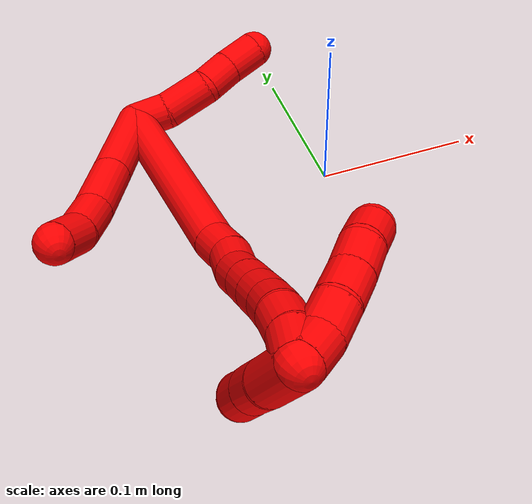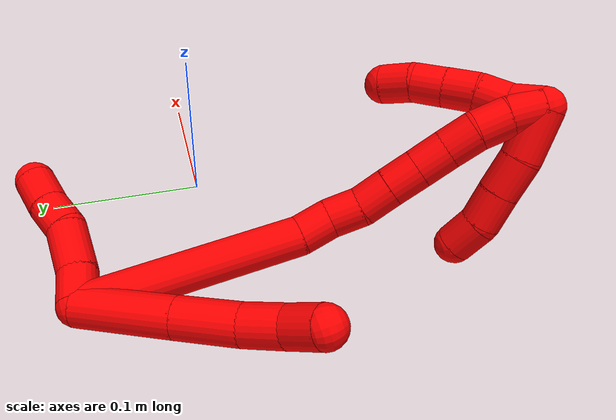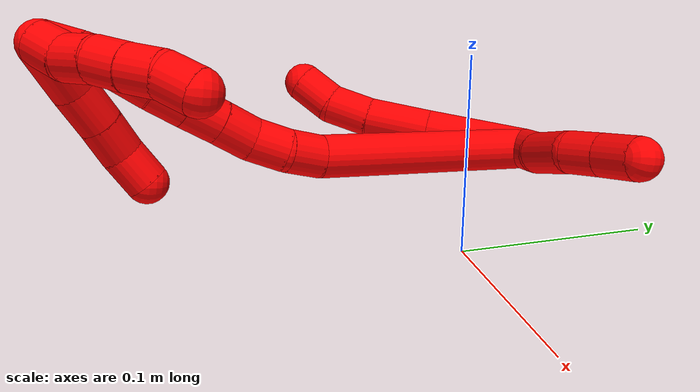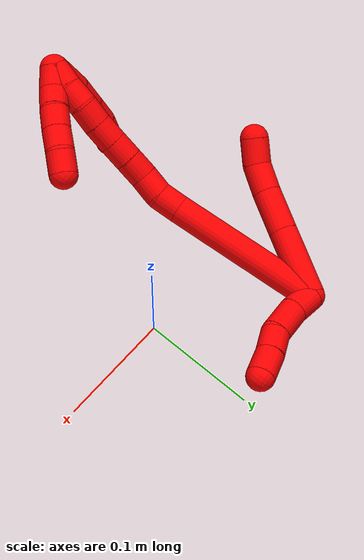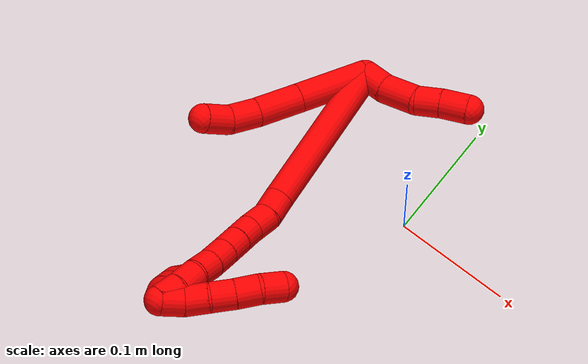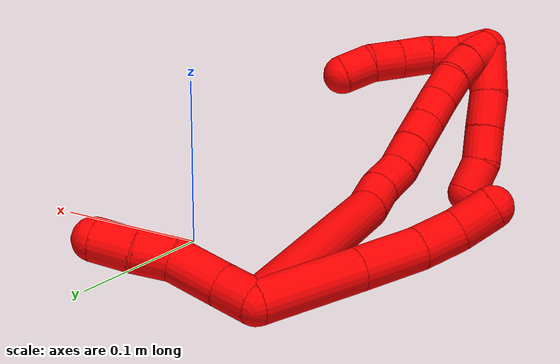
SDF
<sdf version="1.7">
 <world name="default">
  <model name="2">
   <static>0</static>
   <link name="2">
    <collision name="collision-cylinder-e_1_2_8">
     <pose>0.005205 0.014963 0.02638 -0.515945 0.169959 -0.044945</pose>
     <geometry><cylinder><radius>0.0125</radius><length>0.061543</length></cylinder></geometry>
     <surface>
      <friction><ode><mu>1.16</mu><mu2>1.16</mu2><slip1>0</slip1><slip2>0</slip2></ode></friction>
      <contact><ode><kp>1e+06</kp><kd>1</kd><max_vel>0</max_vel><min_depth>0.001</min_depth></ode></contact>
     </surface>
    </collision>
    <visual name="visual-cylinder-e_1_2_8">
     <pose>0.005205 0.014963 0.02638 -0.515945 0.169959 -0.044945</pose>
     <geometry><cylinder><radius>0.0125</radius><length>0.061543</length></cylinder></geometry>
     <material><ambient>1 0 0 1</ambient></material>
    </visual>
    <collision name="collision-cylinder-e_2_8_9">
     <pose>0.013946 0.039267 0.069373 -0.512261 0.183496 -0.04818</pose>
     <geometry><cylinder><radius>0.0125</radius><length>0.038768</length></cylinder></geometry>
     <surface>
      <friction><ode><mu>1.16</mu><mu2>1.16</mu2><slip1>0</slip1><slip2>0</slip2></ode></friction>
      <contact><ode><kp>1e+06</kp><kd>1</kd><max_vel>0</max_vel><min_depth>0.001</min_depth></ode></contact>
     </surface>
    </collision>
    <visual name="visual-cylinder-e_2_8_9">
     <pose>0.013946 0.039267 0.069373 -0.512261 0.183496 -0.04818</pose>
     <geometry><cylinder><radius>0.0125</radius><length>0.038768</length></cylinder></geometry>
     <material><ambient>1 0 0 1</ambient></material>
    </visual>
    <collision name="collision-cylinder-e_3_9_10">
     <pose>0.021523 0.054369 0.096964 -0.483182 0.31498 -0.078221</pose>
     <geometry><cylinder><radius>0.0125</radius><length>0.026079</length></cylinder></geometry>
     <surface>
      <friction><ode><mu>1.16</mu><mu2>1.16</mu2><slip1>0</slip1><slip2>0</slip2></ode></friction>
      <contact><ode><kp>1e+06</kp><kd>1</kd><max_vel>0</max_vel><min_depth>0.001</min_depth></ode></contact>
     </surface>
    </collision>
    <visual name="visual-cylinder-e_3_9_10">
     <pose>0.021523 0.054369 0.096964 -0.483182 0.31498 -0.078221</pose>
     <geometry><cylinder><radius>0.0125</radius><length>0.026079</length></cylinder></geometry>
     <material><ambient>1 0 0 1</ambient></material>
    </visual>
    <collision name="collision-cylinder-e_4_10_6">
     <pose>0.032487 0.065304 0.115982 -0.571922 0.626771 -0.189989</pose>
     <geometry><cylinder><radius>0.0125</radius><length>0.023609</length></cylinder></geometry>
     <surface>
      <friction><ode><mu>1.16</mu><mu2>1.16</mu2><slip1>0</slip1><slip2>0</slip2></ode></friction>
      <contact><ode><kp>1e+06</kp><kd>1</kd><max_vel>0</max_vel><min_depth>0.001</min_depth></ode></contact>
     </surface>
    </collision>
    <visual name="visual-cylinder-e_4_10_6">
     <pose>0.032487 0.065304 0.115982 -0.571922 0.626771 -0.189989</pose>
     <geometry><cylinder><radius>0.0125</radius><length>0.023609</length></cylinder></geometry>
     <material><ambient>1 0 0 1</ambient></material>
    </visual>
    <collision name="collision-cylinder-e_1_2_11">
     <pose>-0.002137 -0.011109 0.001568 1.43059 -0.188231 -0.163649</pose>
     <geometry><cylinder><radius>0.0125</radius><length>0.022841</length></cylinder></geometry>
     <surface>
      <friction><ode><mu>1.16</mu><mu2>1.16</mu2><slip1>0</slip1><slip2>0</slip2></ode></friction>
      <contact><ode><kp>1e+06</kp><kd>1</kd><max_vel>0</max_vel><min_depth>0.001</min_depth></ode></contact>
     </surface>
    </collision>
    <visual name="visual-cylinder-e_1_2_11">
     <pose>-0.002137 -0.011109 0.001568 1.43059 -0.188231 -0.163649</pose>
     <geometry><cylinder><radius>0.0125</radius><length>0.022841</length></cylinder></geometry>
     <material><ambient>1 0 0 1</ambient></material>
    </visual>
    <collision name="collision-cylinder-e_2_11_12">
     <pose>-0.004713 -0.037946 0.00268 1.59977 -0.027877 -0.028697</pose>
     <geometry><cylinder><radius>0.0125</radius><length>0.031482</length></cylinder></geometry>
     <surface>
      <friction><ode><mu>1.16</mu><mu2>1.16</mu2><slip1>0</slip1><slip2>0</slip2></ode></friction>
      <contact><ode><kp>1e+06</kp><kd>1</kd><max_vel>0</max_vel><min_depth>0.001</min_depth></ode></contact>
     </surface>
    </collision>
    <visual name="visual-cylinder-e_2_11_12">
     <pose>-0.004713 -0.037946 0.00268 1.59977 -0.027877 -0.028697</pose>
     <geometry><cylinder><radius>0.0125</radius><length>0.031482</length></cylinder></geometry>
     <material><ambient>1 0 0 1</ambient></material>
    </visual>
    <collision name="collision-cylinder-e_3_12_13">
     <pose>-0.006219 -0.063705 -0.001659 1.94012 -0.098869 -0.144155</pose>
     <geometry><cylinder><radius>0.0125</radius><length>0.021618</length></cylinder></geometry>
     <surface>
      <friction><ode><mu>1.16</mu><mu2>1.16</mu2><slip1>0</slip1><slip2>0</slip2></ode></friction>
      <contact><ode><kp>1e+06</kp><kd>1</kd><max_vel>0</max_vel><min_depth>0.001</min_depth></ode></contact>
     </surface>
    </collision>
    <visual name="visual-cylinder-e_3_12_13">
     <pose>-0.006219 -0.063705 -0.001659 1.94012 -0.098869 -0.144155</pose>
     <geometry><cylinder><radius>0.0125</radius><length>0.021618</length></cylinder></geometry>
     <material><ambient>1 0 0 1</ambient></material>
    </visual>
    <collision name="collision-cylinder-e_4_13_5">
     <pose>-0.008641 -0.085318 -0.008494 1.82039 -0.112958 -0.145263</pose>
     <geometry><cylinder><radius>0.0125</radius><length>0.024059</length></cylinder></geometry>
     <surface>
      <friction><ode><mu>1.16</mu><mu2>1.16</mu2><slip1>0</slip1><slip2>0</slip2></ode></friction>
      <contact><ode><kp>1e+06</kp><kd>1</kd><max_vel>0</max_vel><min_depth>0.001</min_depth></ode></contact>
     </surface>
    </collision>
    <visual name="visual-cylinder-e_4_13_5">
     <pose>-0.008641 -0.085318 -0.008494 1.82039 -0.112958 -0.145263</pose>
     <geometry><cylinder><radius>0.0125</radius><length>0.024059</length></cylinder></geometry>
     <material><ambient>1 0 0 1</ambient></material>
    </visual>
    <collision name="collision-cylinder-e_1_2_14">
     <pose>-0.006566 -0.001356 0.067932 0.019954 -0.096336 -0.000962</pose>
     <geometry><cylinder><radius>0.0125</radius><length>0.136524</length></cylinder></geometry>
     <surface>
      <friction><ode><mu>1.16</mu><mu2>1.16</mu2><slip1>0</slip1><slip2>0</slip2></ode></friction>
      <contact><ode><kp>1e+06</kp><kd>1</kd><max_vel>0</max_vel><min_depth>0.001</min_depth></ode></contact>
     </surface>
    </collision>
    <visual name="visual-cylinder-e_1_2_14">
     <pose>-0.006566 -0.001356 0.067932 0.019954 -0.096336 -0.000962</pose>
     <geometry><cylinder><radius>0.0125</radius><length>0.136524</length></cylinder></geometry>
     <material><ambient>1 0 0 1</ambient></material>
    </visual>
    <collision name="collision-cylinder-e_2_14_15">
     <pose>-0.01212 -0.004514 0.146367 0.16995 0.094647 0.008068</pose>
     <geometry><cylinder><radius>0.0125</radius><length>0.021408</length></cylinder></geometry>
     <surface>
      <friction><ode><mu>1.16</mu><mu2>1.16</mu2><slip1>0</slip1><slip2>0</slip2></ode></friction>
      <contact><ode><kp>1e+06</kp><kd>1</kd><max_vel>0</max_vel><min_depth>0.001</min_depth></ode></contact>
     </surface>
    </collision>
    <visual name="visual-cylinder-e_2_14_15">
     <pose>-0.01212 -0.004514 0.146367 0.16995 0.094647 0.008068</pose>
     <geometry><cylinder><radius>0.0125</radius><length>0.021408</length></cylinder></geometry>
     <material><ambient>1 0 0 1</ambient></material>
    </visual>
    <collision name="collision-cylinder-e_3_15_16">
     <pose>-0.00846 -0.005582 0.167 -0.072361 0.255065 -0.009283</pose>
     <geometry><cylinder><radius>0.0125</radius><length>0.020994</length></cylinder></geometry>
     <surface>
      <friction><ode><mu>1.16</mu><mu2>1.16</mu2><slip1>0</slip1><slip2>0</slip2></ode></friction>
      <contact><ode><kp>1e+06</kp><kd>1</kd><max_vel>0</max_vel><min_depth>0.001</min_depth></ode></contact>
     </surface>
    </collision>
    <visual name="visual-cylinder-e_3_15_16">
     <pose>-0.00846 -0.005582 0.167 -0.072361 0.255065 -0.009283</pose>
     <geometry><cylinder><radius>0.0125</radius><length>0.020994</length></cylinder></geometry>
     <material><ambient>1 0 0 1</ambient></material>
    </visual>
    <collision name="collision-cylinder-e_4_16_17">
     <pose>-0.001912 -0.00618 0.186522 0.140965 0.390023 0.027888</pose>
     <geometry><cylinder><radius>0.0125</radius><length>0.020511</length></cylinder></geometry>
     <surface>
      <friction><ode><mu>1.16</mu><mu2>1.16</mu2><slip1>0</slip1><slip2>0</slip2></ode></friction>
      <contact><ode><kp>1e+06</kp><kd>1</kd><max_vel>0</max_vel><min_depth>0.001</min_depth></ode></contact>
     </surface>
    </collision>
    <visual name="visual-cylinder-e_4_16_17">
     <pose>-0.001912 -0.00618 0.186522 0.140965 0.390023 0.027888</pose>
     <geometry><cylinder><radius>0.0125</radius><length>0.020511</length></cylinder></geometry>
     <material><ambient>1 0 0 1</ambient></material>
    </visual>
    <collision name="collision-cylinder-e_5_17_18">
     <pose>0.005635 -0.008652 0.205206 0.121997 0.371618 0.02296</pose>
     <geometry><cylinder><radius>0.0125</radius><length>0.020095</length></cylinder></geometry>
     <surface>
      <friction><ode><mu>1.16</mu><mu2>1.16</mu2><slip1>0</slip1><slip2>0</slip2></ode></friction>
      <contact><ode><kp>1e+06</kp><kd>1</kd><max_vel>0</max_vel><min_depth>0.001</min_depth></ode></contact>
     </surface>
    </collision>
    <visual name="visual-cylinder-e_5_17_18">
     <pose>0.005635 -0.008652 0.205206 0.121997 0.371618 0.02296</pose>
     <geometry><cylinder><radius>0.0125</radius><length>0.020095</length></cylinder></geometry>
     <material><ambient>1 0 0 1</ambient></material>
    </visual>
    <collision name="collision-cylinder-e_6_18_19">
     <pose>0.013185 -0.010955 0.223831 0.124015 0.393192 0.02473</pose>
     <geometry><cylinder><radius>0.0125</radius><length>0.020366</length></cylinder></geometry>
     <surface>
      <friction><ode><mu>1.16</mu><mu2>1.16</mu2><slip1>0</slip1><slip2>0</slip2></ode></friction>
      <contact><ode><kp>1e+06</kp><kd>1</kd><max_vel>0</max_vel><min_depth>0.001</min_depth></ode></contact>
     </surface>
    </collision>
    <visual name="visual-cylinder-e_6_18_19">
     <pose>0.013185 -0.010955 0.223831 0.124015 0.393192 0.02473</pose>
     <geometry><cylinder><radius>0.0125</radius><length>0.020366</length></cylinder></geometry>
     <material><ambient>1 0 0 1</ambient></material>
    </visual>
    <collision name="collision-cylinder-e_7_19_20">
     <pose>0.021463 -0.012744 0.242168 0.069415 0.451525 0.015949</pose>
     <geometry><cylinder><radius>0.0125</radius><length>0.020059</length></cylinder></geometry>
     <surface>
      <friction><ode><mu>1.16</mu><mu2>1.16</mu2><slip1>0</slip1><slip2>0</slip2></ode></friction>
      <contact><ode><kp>1e+06</kp><kd>1</kd><max_vel>0</max_vel><min_depth>0.001</min_depth></ode></contact>
     </surface>
    </collision>
    <visual name="visual-cylinder-e_7_19_20">
     <pose>0.021463 -0.012744 0.242168 0.069415 0.451525 0.015949</pose>
     <geometry><cylinder><radius>0.0125</radius><length>0.020059</length></cylinder></geometry>
     <material><ambient>1 0 0 1</ambient></material>
    </visual>
    <collision name="collision-cylinder-e_8_20_21">
     <pose>0.028445 -0.013106 0.260832 -0.027314 0.263308 -0.003617</pose>
     <geometry><cylinder><radius>0.0125</radius><length>0.020021</length></cylinder></geometry>
     <surface>
      <friction><ode><mu>1.16</mu><mu2>1.16</mu2><slip1>0</slip1><slip2>0</slip2></ode></friction>
      <contact><ode><kp>1e+06</kp><kd>1</kd><max_vel>0</max_vel><min_depth>0.001</min_depth></ode></contact>
     </surface>
    </collision>
    <visual name="visual-cylinder-e_8_20_21">
     <pose>0.028445 -0.013106 0.260832 -0.027314 0.263308 -0.003617</pose>
     <geometry><cylinder><radius>0.0125</radius><length>0.020021</length></cylinder></geometry>
     <material><ambient>1 0 0 1</ambient></material>
    </visual>
    <collision name="collision-cylinder-e_9_21_1">
     <pose>0.033177 -0.011086 0.280118 -0.180528 0.214042 -0.019447</pose>
     <geometry><cylinder><radius>0.0125</radius><length>0.020021</length></cylinder></geometry>
     <surface>
      <friction><ode><mu>1.16</mu><mu2>1.16</mu2><slip1>0</slip1><slip2>0</slip2></ode></friction>
      <contact><ode><kp>1e+06</kp><kd>1</kd><max_vel>0</max_vel><min_depth>0.001</min_depth></ode></contact>
     </surface>
    </collision>
    <visual name="visual-cylinder-e_9_21_1">
     <pose>0.033177 -0.011086 0.280118 -0.180528 0.214042 -0.019447</pose>
     <geometry><cylinder><radius>0.0125</radius><length>0.020021</length></cylinder></geometry>
     <material><ambient>1 0 0 1</ambient></material>
    </visual>
    <collision name="collision-cylinder-e_1_1_22">
     <pose>0.031151 -0.015974 0.283527 2.32269 -0.428184 -0.928894</pose>
     <geometry><cylinder><radius>0.0125</radius><length>0.02</length></cylinder></geometry>
     <surface>
      <friction><ode><mu>1.16</mu><mu2>1.16</mu2><slip1>0</slip1><slip2>0</slip2></ode></friction>
      <contact><ode><kp>1e+06</kp><kd>1</kd><max_vel>0</max_vel><min_depth>0.001</min_depth></ode></contact>
     </surface>
    </collision>
    <visual name="visual-cylinder-e_1_1_22">
     <pose>0.031151 -0.015974 0.283527 2.32269 -0.428184 -0.928894</pose>
     <geometry><cylinder><radius>0.0125</radius><length>0.02</length></cylinder></geometry>
     <material><ambient>1 0 0 1</ambient></material>
    </visual>
    <collision name="collision-cylinder-e_2_22_23">
     <pose>0.026091 -0.030201 0.270857 2.27618 -0.090921 -0.196343</pose>
     <geometry><cylinder><radius>0.0125</radius><length>0.02</length></cylinder></geometry>
     <surface>
      <friction><ode><mu>1.16</mu><mu2>1.16</mu2><slip1>0</slip1><slip2>0</slip2></ode></friction>
      <contact><ode><kp>1e+06</kp><kd>1</kd><max_vel>0</max_vel><min_depth>0.001</min_depth></ode></contact>
     </surface>
    </collision>
    <visual name="visual-cylinder-e_2_22_23">
     <pose>0.026091 -0.030201 0.270857 2.27618 -0.090921 -0.196343</pose>
     <geometry><cylinder><radius>0.0125</radius><length>0.02</length></cylinder></geometry>
     <material><ambient>1 0 0 1</ambient></material>
    </visual>
    <collision name="collision-cylinder-e_3_23_24">
     <pose>0.022926 -0.044457 0.257304 2.3869 -0.227638 -0.561602</pose>
     <geometry><cylinder><radius>0.0125</radius><length>0.02</length></cylinder></geometry>
     <surface>
      <friction><ode><mu>1.16</mu><mu2>1.16</mu2><slip1>0</slip1><slip2>0</slip2></ode></friction>
      <contact><ode><kp>1e+06</kp><kd>1</kd><max_vel>0</max_vel><min_depth>0.001</min_depth></ode></contact>
     </surface>
    </collision>
    <visual name="visual-cylinder-e_3_23_24">
     <pose>0.022926 -0.044457 0.257304 2.3869 -0.227638 -0.561602</pose>
     <geometry><cylinder><radius>0.0125</radius><length>0.02</length></cylinder></geometry>
     <material><ambient>1 0 0 1</ambient></material>
    </visual>
    <collision name="collision-cylinder-e_4_24_25">
     <pose>0.018854 -0.057565 0.24277 2.4284 -0.18255 -0.481858</pose>
     <geometry><cylinder><radius>0.0125</radius><length>0.02</length></cylinder></geometry>
     <surface>
      <friction><ode><mu>1.16</mu><mu2>1.16</mu2><slip1>0</slip1><slip2>0</slip2></ode></friction>
      <contact><ode><kp>1e+06</kp><kd>1</kd><max_vel>0</max_vel><min_depth>0.001</min_depth></ode></contact>
     </surface>
    </collision>
    <visual name="visual-cylinder-e_4_24_25">
     <pose>0.018854 -0.057565 0.24277 2.4284 -0.18255 -0.481858</pose>
     <geometry><cylinder><radius>0.0125</radius><length>0.02</length></cylinder></geometry>
     <material><ambient>1 0 0 1</ambient></material>
    </visual>
    <collision name="collision-cylinder-e_5_25_4">
     <pose>0.012941 -0.06931 0.227916 2.52011 -0.42214 -1.17672</pose>
     <geometry><cylinder><radius>0.0125</radius><length>0.02</length></cylinder></geometry>
     <surface>
      <friction><ode><mu>1.16</mu><mu2>1.16</mu2><slip1>0</slip1><slip2>0</slip2></ode></friction>
      <contact><ode><kp>1e+06</kp><kd>1</kd><max_vel>0</max_vel><min_depth>0.001</min_depth></ode></contact>
     </surface>
    </collision>
    <visual name="visual-cylinder-e_5_25_4">
     <pose>0.012941 -0.06931 0.227916 2.52011 -0.42214 -1.17672</pose>
     <geometry><cylinder><radius>0.0125</radius><length>0.02</length></cylinder></geometry>
     <material><ambient>1 0 0 1</ambient></material>
    </visual>
    <collision name="collision-cylinder-e_1_1_26">
     <pose>0.025262 -0.000736 0.280653 -2.3842 -0.676457 1.44781</pose>
     <geometry><cylinder><radius>0.0125</radius><length>0.032079</length></cylinder></geometry>
     <surface>
      <friction><ode><mu>1.16</mu><mu2>1.16</mu2><slip1>0</slip1><slip2>0</slip2></ode></friction>
      <contact><ode><kp>1e+06</kp><kd>1</kd><max_vel>0</max_vel><min_depth>0.001</min_depth></ode></contact>
     </surface>
    </collision>
    <visual name="visual-cylinder-e_1_1_26">
     <pose>0.025262 -0.000736 0.280653 -2.3842 -0.676457 1.44781</pose>
     <geometry><cylinder><radius>0.0125</radius><length>0.032079</length></cylinder></geometry>
     <material><ambient>1 0 0 1</ambient></material>
    </visual>
    <collision name="collision-cylinder-e_2_26_27">
     <pose>0.007252 0.012475 0.26407 -2.58927 -0.735703 1.87347</pose>
     <geometry><cylinder><radius>0.0125</radius><length>0.023748</length></cylinder></geometry>
     <surface>
      <friction><ode><mu>1.16</mu><mu2>1.16</mu2><slip1>0</slip1><slip2>0</slip2></ode></friction>
      <contact><ode><kp>1e+06</kp><kd>1</kd><max_vel>0</max_vel><min_depth>0.001</min_depth></ode></contact>
     </surface>
    </collision>
    <visual name="visual-cylinder-e_2_26_27">
     <pose>0.007252 0.012475 0.26407 -2.58927 -0.735703 1.87347</pose>
     <geometry><cylinder><radius>0.0125</radius><length>0.023748</length></cylinder></geometry>
     <material><ambient>1 0 0 1</ambient></material>
    </visual>
    <collision name="collision-cylinder-e_3_27_28">
     <pose>-0.008437 0.021693 0.249763 -2.54777 -0.754025 1.82584</pose>
     <geometry><cylinder><radius>0.0125</radius><length>0.022553</length></cylinder></geometry>
     <surface>
      <friction><ode><mu>1.16</mu><mu2>1.16</mu2><slip1>0</slip1><slip2>0</slip2></ode></friction>
      <contact><ode><kp>1e+06</kp><kd>1</kd><max_vel>0</max_vel><min_depth>0.001</min_depth></ode></contact>
     </surface>
    </collision>
    <visual name="visual-cylinder-e_3_27_28">
     <pose>-0.008437 0.021693 0.249763 -2.54777 -0.754025 1.82584</pose>
     <geometry><cylinder><radius>0.0125</radius><length>0.022553</length></cylinder></geometry>
     <material><ambient>1 0 0 1</ambient></material>
    </visual>
    <collision name="collision-cylinder-e_4_28_3">
     <pose>-0.023924 0.027257 0.235495 -3.01299 -0.801723 2.84003</pose>
     <geometry><cylinder><radius>0.0125</radius><length>0.021619</length></cylinder></geometry>
     <surface>
      <friction><ode><mu>1.16</mu><mu2>1.16</mu2><slip1>0</slip1><slip2>0</slip2></ode></friction>
      <contact><ode><kp>1e+06</kp><kd>1</kd><max_vel>0</max_vel><min_depth>0.001</min_depth></ode></contact>
     </surface>
    </collision>
    <visual name="visual-cylinder-e_4_28_3">
     <pose>-0.023924 0.027257 0.235495 -3.01299 -0.801723 2.84003</pose>
     <geometry><cylinder><radius>0.0125</radius><length>0.021619</length></cylinder></geometry>
     <material><ambient>1 0 0 1</ambient></material>
    </visual>
    <collision name="collision-sphere-3">
     <pose>-0.031691 0.028221 0.228039 0 -0 0</pose>
     <geometry><sphere><radius>0.0125</radius></sphere></geometry>
     <surface>
      <friction><ode><mu>1.16</mu><mu2>1.16</mu2><slip1>0</slip1><slip2>0</slip2></ode></friction>
      <contact><ode><kp>1e+06</kp><kd>1</kd><max_vel>0</max_vel><min_depth>0.001</min_depth></ode></contact>
     </surface>
    </collision>
    <visual name="visual-sphere-3">
     <pose>-0.031691 0.028221 0.228039 0 -0 0</pose>
     <geometry><sphere><radius>0.0125</radius></sphere></geometry>
     <material><ambient>1 0 0 1</ambient></material>
    </visual>
    <collision name="collision-sphere-28">
     <pose>-0.016157 0.026293 0.24295 0 -0 0</pose>
     <geometry><sphere><radius>0.0125</radius></sphere></geometry>
     <surface>
      <friction><ode><mu>1.16</mu><mu2>1.16</mu2><slip1>0</slip1><slip2>0</slip2></ode></friction>
      <contact><ode><kp>1e+06</kp><kd>1</kd><max_vel>0</max_vel><min_depth>0.001</min_depth></ode></contact>
     </surface>
    </collision>
    <visual name="visual-sphere-28">
     <pose>-0.016157 0.026293 0.24295 0 -0 0</pose>
     <geometry><sphere><radius>0.0125</radius></sphere></geometry>
     <material><ambient>1 0 0 1</ambient></material>
    </visual>
    <collision name="collision-sphere-27">
     <pose>-0.000717 0.017094 0.256576 0 -0 0</pose>
     <geometry><sphere><radius>0.0125</radius></sphere></geometry>
     <surface>
      <friction><ode><mu>1.16</mu><mu2>1.16</mu2><slip1>0</slip1><slip2>0</slip2></ode></friction>
      <contact><ode><kp>1e+06</kp><kd>1</kd><max_vel>0</max_vel><min_depth>0.001</min_depth></ode></contact>
     </surface>
    </collision>
    <visual name="visual-sphere-27">
     <pose>-0.000717 0.017094 0.256576 0 -0 0</pose>
     <geometry><sphere><radius>0.0125</radius></sphere></geometry>
     <material><ambient>1 0 0 1</ambient></material>
    </visual>
    <collision name="collision-sphere-26">
     <pose>0.015221 0.007857 0.271564 0 -0 0</pose>
     <geometry><sphere><radius>0.0125</radius></sphere></geometry>
     <surface>
      <friction><ode><mu>1.16</mu><mu2>1.16</mu2><slip1>0</slip1><slip2>0</slip2></ode></friction>
      <contact><ode><kp>1e+06</kp><kd>1</kd><max_vel>0</max_vel><min_depth>0.001</min_depth></ode></contact>
     </surface>
    </collision>
    <visual name="visual-sphere-26">
     <pose>0.015221 0.007857 0.271564 0 -0 0</pose>
     <geometry><sphere><radius>0.0125</radius></sphere></geometry>
     <material><ambient>1 0 0 1</ambient></material>
    </visual>
    <collision name="collision-sphere-4">
     <pose>0.008844 -0.074621 0.2205 0 -0 0</pose>
     <geometry><sphere><radius>0.0125</radius></sphere></geometry>
     <surface>
      <friction><ode><mu>1.16</mu><mu2>1.16</mu2><slip1>0</slip1><slip2>0</slip2></ode></friction>
      <contact><ode><kp>1e+06</kp><kd>1</kd><max_vel>0</max_vel><min_depth>0.001</min_depth></ode></contact>
     </surface>
    </collision>
    <visual name="visual-sphere-4">
     <pose>0.008844 -0.074621 0.2205 0 -0 0</pose>
     <geometry><sphere><radius>0.0125</radius></sphere></geometry>
     <material><ambient>1 0 0 1</ambient></material>
    </visual>
    <collision name="collision-sphere-25">
     <pose>0.017039 -0.063998 0.235333 0 -0 0</pose>
     <geometry><sphere><radius>0.0125</radius></sphere></geometry>
     <surface>
      <friction><ode><mu>1.16</mu><mu2>1.16</mu2><slip1>0</slip1><slip2>0</slip2></ode></friction>
      <contact><ode><kp>1e+06</kp><kd>1</kd><max_vel>0</max_vel><min_depth>0.001</min_depth></ode></contact>
     </surface>
    </collision>
    <visual name="visual-sphere-25">
     <pose>0.017039 -0.063998 0.235333 0 -0 0</pose>
     <geometry><sphere><radius>0.0125</radius></sphere></geometry>
     <material><ambient>1 0 0 1</ambient></material>
    </visual>
    <collision name="collision-sphere-24">
     <pose>0.020669 -0.051131 0.250207 0 -0 0</pose>
     <geometry><sphere><radius>0.0125</radius></sphere></geometry>
     <surface>
      <friction><ode><mu>1.16</mu><mu2>1.16</mu2><slip1>0</slip1><slip2>0</slip2></ode></friction>
      <contact><ode><kp>1e+06</kp><kd>1</kd><max_vel>0</max_vel><min_depth>0.001</min_depth></ode></contact>
     </surface>
    </collision>
    <visual name="visual-sphere-24">
     <pose>0.020669 -0.051131 0.250207 0 -0 0</pose>
     <geometry><sphere><radius>0.0125</radius></sphere></geometry>
     <material><ambient>1 0 0 1</ambient></material>
    </visual>
    <collision name="collision-sphere-23">
     <pose>0.025183 -0.037783 0.264401 0 -0 0</pose>
     <geometry><sphere><radius>0.0125</radius></sphere></geometry>
     <surface>
      <friction><ode><mu>1.16</mu><mu2>1.16</mu2><slip1>0</slip1><slip2>0</slip2></ode></friction>
      <contact><ode><kp>1e+06</kp><kd>1</kd><max_vel>0</max_vel><min_depth>0.001</min_depth></ode></contact>
     </surface>
    </collision>
    <visual name="visual-sphere-23">
     <pose>0.025183 -0.037783 0.264401 0 -0 0</pose>
     <geometry><sphere><radius>0.0125</radius></sphere></geometry>
     <material><ambient>1 0 0 1</ambient></material>
    </visual>
    <collision name="collision-sphere-22">
     <pose>0.026999 -0.022619 0.277314 0 -0 0</pose>
     <geometry><sphere><radius>0.0125</radius></sphere></geometry>
     <surface>
      <friction><ode><mu>1.16</mu><mu2>1.16</mu2><slip1>0</slip1><slip2>0</slip2></ode></friction>
      <contact><ode><kp>1e+06</kp><kd>1</kd><max_vel>0</max_vel><min_depth>0.001</min_depth></ode></contact>
     </surface>
    </collision>
    <visual name="visual-sphere-22">
     <pose>0.026999 -0.022619 0.277314 0 -0 0</pose>
     <geometry><sphere><radius>0.0125</radius></sphere></geometry>
     <material><ambient>1 0 0 1</ambient></material>
    </visual>
    <collision name="collision-sphere-1">
     <pose>0.035303 -0.009329 0.289741 0 -0 0</pose>
     <geometry><sphere><radius>0.0125</radius></sphere></geometry>
     <surface>
      <friction><ode><mu>1.16</mu><mu2>1.16</mu2><slip1>0</slip1><slip2>0</slip2></ode></friction>
      <contact><ode><kp>1e+06</kp><kd>1</kd><max_vel>0</max_vel><min_depth>0.001</min_depth></ode></contact>
     </surface>
    </collision>
    <visual name="visual-sphere-1">
     <pose>0.035303 -0.009329 0.289741 0 -0 0</pose>
     <geometry><sphere><radius>0.0125</radius></sphere></geometry>
     <material><ambient>1 0 0 1</ambient></material>
    </visual>
    <collision name="collision-sphere-21">
     <pose>0.03105 -0.012842 0.270494 0 -0 0</pose>
     <geometry><sphere><radius>0.0125</radius></sphere></geometry>
     <surface>
      <friction><ode><mu>1.16</mu><mu2>1.16</mu2><slip1>0</slip1><slip2>0</slip2></ode></friction>
      <contact><ode><kp>1e+06</kp><kd>1</kd><max_vel>0</max_vel><min_depth>0.001</min_depth></ode></contact>
     </surface>
    </collision>
    <visual name="visual-sphere-21">
     <pose>0.03105 -0.012842 0.270494 0 -0 0</pose>
     <geometry><sphere><radius>0.0125</radius></sphere></geometry>
     <material><ambient>1 0 0 1</ambient></material>
    </visual>
    <collision name="collision-sphere-11">
     <pose>-0.004274 -0.022218 0.003136 0 -0 0</pose>
     <geometry><sphere><radius>0.0125</radius></sphere></geometry>
     <surface>
      <friction><ode><mu>1.16</mu><mu2>1.16</mu2><slip1>0</slip1><slip2>0</slip2></ode></friction>
      <contact><ode><kp>1e+06</kp><kd>1</kd><max_vel>0</max_vel><min_depth>0.001</min_depth></ode></contact>
     </surface>
    </collision>
    <visual name="visual-sphere-11">
     <pose>-0.004274 -0.022218 0.003136 0 -0 0</pose>
     <geometry><sphere><radius>0.0125</radius></sphere></geometry>
     <material><ambient>1 0 0 1</ambient></material>
    </visual>
    <collision name="collision-sphere-6">
     <pose>0.039411 0.070478 0.124022 0 -0 0</pose>
     <geometry><sphere><radius>0.0125</radius></sphere></geometry>
     <surface>
      <friction><ode><mu>1.16</mu><mu2>1.16</mu2><slip1>0</slip1><slip2>0</slip2></ode></friction>
      <contact><ode><kp>1e+06</kp><kd>1</kd><max_vel>0</max_vel><min_depth>0.001</min_depth></ode></contact>
     </surface>
    </collision>
    <visual name="visual-sphere-6">
     <pose>0.039411 0.070478 0.124022 0 -0 0</pose>
     <geometry><sphere><radius>0.0125</radius></sphere></geometry>
     <material><ambient>1 0 0 1</ambient></material>
    </visual>
    <collision name="collision-sphere-10">
     <pose>0.025563 0.060129 0.107943 0 -0 0</pose>
     <geometry><sphere><radius>0.0125</radius></sphere></geometry>
     <surface>
      <friction><ode><mu>1.16</mu><mu2>1.16</mu2><slip1>0</slip1><slip2>0</slip2></ode></friction>
      <contact><ode><kp>1e+06</kp><kd>1</kd><max_vel>0</max_vel><min_depth>0.001</min_depth></ode></contact>
     </surface>
    </collision>
    <visual name="visual-sphere-10">
     <pose>0.025563 0.060129 0.107943 0 -0 0</pose>
     <geometry><sphere><radius>0.0125</radius></sphere></geometry>
     <material><ambient>1 0 0 1</ambient></material>
    </visual>
    <collision name="collision-sphere-9">
     <pose>0.017483 0.048608 0.085985 0 -0 0</pose>
     <geometry><sphere><radius>0.0125</radius></sphere></geometry>
     <surface>
      <friction><ode><mu>1.16</mu><mu2>1.16</mu2><slip1>0</slip1><slip2>0</slip2></ode></friction>
      <contact><ode><kp>1e+06</kp><kd>1</kd><max_vel>0</max_vel><min_depth>0.001</min_depth></ode></contact>
     </surface>
    </collision>
    <visual name="visual-sphere-9">
     <pose>0.017483 0.048608 0.085985 0 -0 0</pose>
     <geometry><sphere><radius>0.0125</radius></sphere></geometry>
     <material><ambient>1 0 0 1</ambient></material>
    </visual>
    <collision name="collision-sphere-2">
     <geometry><sphere><radius>0.0125</radius></sphere></geometry>
     <surface>
      <friction><ode><mu>1.16</mu><mu2>1.16</mu2><slip1>0</slip1><slip2>0</slip2></ode></friction>
      <contact><ode><kp>1e+06</kp><kd>1</kd><max_vel>0</max_vel><min_depth>0.001</min_depth></ode></contact>
     </surface>
    </collision>
    <visual name="visual-sphere-2">
     <geometry><sphere><radius>0.0125</radius></sphere></geometry>
     <material><ambient>1 0 0 1</ambient></material>
    </visual>
    <collision name="collision-sphere-19">
     <pose>0.017087 -0.012118 0.233165 0 -0 0</pose>
     <geometry><sphere><radius>0.0125</radius></sphere></geometry>
     <surface>
      <friction><ode><mu>1.16</mu><mu2>1.16</mu2><slip1>0</slip1><slip2>0</slip2></ode></friction>
      <contact><ode><kp>1e+06</kp><kd>1</kd><max_vel>0</max_vel><min_depth>0.001</min_depth></ode></contact>
     </surface>
    </collision>
    <visual name="visual-sphere-19">
     <pose>0.017087 -0.012118 0.233165 0 -0 0</pose>
     <geometry><sphere><radius>0.0125</radius></sphere></geometry>
     <material><ambient>1 0 0 1</ambient></material>
    </visual>
    <collision name="collision-sphere-8">
     <pose>0.010409 0.029925 0.05276 0 -0 0</pose>
     <geometry><sphere><radius>0.0125</radius></sphere></geometry>
     <surface>
      <friction><ode><mu>1.16</mu><mu2>1.16</mu2><slip1>0</slip1><slip2>0</slip2></ode></friction>
      <contact><ode><kp>1e+06</kp><kd>1</kd><max_vel>0</max_vel><min_depth>0.001</min_depth></ode></contact>
     </surface>
    </collision>
    <visual name="visual-sphere-8">
     <pose>0.010409 0.029925 0.05276 0 -0 0</pose>
     <geometry><sphere><radius>0.0125</radius></sphere></geometry>
     <material><ambient>1 0 0 1</ambient></material>
    </visual>
    <collision name="collision-sphere-12">
     <pose>-0.005152 -0.053674 0.002224 0 -0 0</pose>
     <geometry><sphere><radius>0.0125</radius></sphere></geometry>
     <surface>
      <friction><ode><mu>1.16</mu><mu2>1.16</mu2><slip1>0</slip1><slip2>0</slip2></ode></friction>
      <contact><ode><kp>1e+06</kp><kd>1</kd><max_vel>0</max_vel><min_depth>0.001</min_depth></ode></contact>
     </surface>
    </collision>
    <visual name="visual-sphere-12">
     <pose>-0.005152 -0.053674 0.002224 0 -0 0</pose>
     <geometry><sphere><radius>0.0125</radius></sphere></geometry>
     <material><ambient>1 0 0 1</ambient></material>
    </visual>
    <collision name="collision-sphere-13">
     <pose>-0.007285 -0.073736 -0.005542 0 -0 0</pose>
     <geometry><sphere><radius>0.0125</radius></sphere></geometry>
     <surface>
      <friction><ode><mu>1.16</mu><mu2>1.16</mu2><slip1>0</slip1><slip2>0</slip2></ode></friction>
      <contact><ode><kp>1e+06</kp><kd>1</kd><max_vel>0</max_vel><min_depth>0.001</min_depth></ode></contact>
     </surface>
    </collision>
    <visual name="visual-sphere-13">
     <pose>-0.007285 -0.073736 -0.005542 0 -0 0</pose>
     <geometry><sphere><radius>0.0125</radius></sphere></geometry>
     <material><ambient>1 0 0 1</ambient></material>
    </visual>
    <collision name="collision-sphere-5">
     <pose>-0.009997 -0.096901 -0.011447 0 -0 0</pose>
     <geometry><sphere><radius>0.0125</radius></sphere></geometry>
     <surface>
      <friction><ode><mu>1.16</mu><mu2>1.16</mu2><slip1>0</slip1><slip2>0</slip2></ode></friction>
      <contact><ode><kp>1e+06</kp><kd>1</kd><max_vel>0</max_vel><min_depth>0.001</min_depth></ode></contact>
     </surface>
    </collision>
    <visual name="visual-sphere-5">
     <pose>-0.009997 -0.096901 -0.011447 0 -0 0</pose>
     <geometry><sphere><radius>0.0125</radius></sphere></geometry>
     <material><ambient>1 0 0 1</ambient></material>
    </visual>
    <collision name="collision-sphere-14">
     <pose>-0.013132 -0.002711 0.135864 0 -0 0</pose>
     <geometry><sphere><radius>0.0125</radius></sphere></geometry>
     <surface>
      <friction><ode><mu>1.16</mu><mu2>1.16</mu2><slip1>0</slip1><slip2>0</slip2></ode></friction>
      <contact><ode><kp>1e+06</kp><kd>1</kd><max_vel>0</max_vel><min_depth>0.001</min_depth></ode></contact>
     </surface>
    </collision>
    <visual name="visual-sphere-14">
     <pose>-0.013132 -0.002711 0.135864 0 -0 0</pose>
     <geometry><sphere><radius>0.0125</radius></sphere></geometry>
     <material><ambient>1 0 0 1</ambient></material>
    </visual>
    <collision name="collision-sphere-15">
     <pose>-0.011109 -0.006316 0.156869 0 -0 0</pose>
     <geometry><sphere><radius>0.0125</radius></sphere></geometry>
     <surface>
      <friction><ode><mu>1.16</mu><mu2>1.16</mu2><slip1>0</slip1><slip2>0</slip2></ode></friction>
      <contact><ode><kp>1e+06</kp><kd>1</kd><max_vel>0</max_vel><min_depth>0.001</min_depth></ode></contact>
     </surface>
    </collision>
    <visual name="visual-sphere-15">
     <pose>-0.011109 -0.006316 0.156869 0 -0 0</pose>
     <geometry><sphere><radius>0.0125</radius></sphere></geometry>
     <material><ambient>1 0 0 1</ambient></material>
    </visual>
    <collision name="collision-sphere-16">
     <pose>-0.005812 -0.004847 0.177131 0 -0 0</pose>
     <geometry><sphere><radius>0.0125</radius></sphere></geometry>
     <surface>
      <friction><ode><mu>1.16</mu><mu2>1.16</mu2><slip1>0</slip1><slip2>0</slip2></ode></friction>
      <contact><ode><kp>1e+06</kp><kd>1</kd><max_vel>0</max_vel><min_depth>0.001</min_depth></ode></contact>
     </surface>
    </collision>
    <visual name="visual-sphere-16">
     <pose>-0.005812 -0.004847 0.177131 0 -0 0</pose>
     <geometry><sphere><radius>0.0125</radius></sphere></geometry>
     <material><ambient>1 0 0 1</ambient></material>
    </visual>
    <collision name="collision-sphere-17">
     <pose>0.001987 -0.007513 0.195914 0 -0 0</pose>
     <geometry><sphere><radius>0.0125</radius></sphere></geometry>
     <surface>
      <friction><ode><mu>1.16</mu><mu2>1.16</mu2><slip1>0</slip1><slip2>0</slip2></ode></friction>
      <contact><ode><kp>1e+06</kp><kd>1</kd><max_vel>0</max_vel><min_depth>0.001</min_depth></ode></contact>
     </surface>
    </collision>
    <visual name="visual-sphere-17">
     <pose>0.001987 -0.007513 0.195914 0 -0 0</pose>
     <geometry><sphere><radius>0.0125</radius></sphere></geometry>
     <material><ambient>1 0 0 1</ambient></material>
    </visual>
    <collision name="collision-sphere-18">
     <pose>0.009284 -0.009791 0.214498 0 -0 0</pose>
     <geometry><sphere><radius>0.0125</radius></sphere></geometry>
     <surface>
      <friction><ode><mu>1.16</mu><mu2>1.16</mu2><slip1>0</slip1><slip2>0</slip2></ode></friction>
      <contact><ode><kp>1e+06</kp><kd>1</kd><max_vel>0</max_vel><min_depth>0.001</min_depth></ode></contact>
     </surface>
    </collision>
    <visual name="visual-sphere-18">
     <pose>0.009284 -0.009791 0.214498 0 -0 0</pose>
     <geometry><sphere><radius>0.0125</radius></sphere></geometry>
     <material><ambient>1 0 0 1</ambient></material>
    </visual>
    <collision name="collision-sphere-20">
     <pose>0.025839 -0.01337 0.251171 0 -0 0</pose>
     <geometry><sphere><radius>0.0125</radius></sphere></geometry>
     <surface>
      <friction><ode><mu>1.16</mu><mu2>1.16</mu2><slip1>0</slip1><slip2>0</slip2></ode></friction>
      <contact><ode><kp>1e+06</kp><kd>1</kd><max_vel>0</max_vel><min_depth>0.001</min_depth></ode></contact>
     </surface>
    </collision>
    <visual name="visual-sphere-20">
     <pose>0.025839 -0.01337 0.251171 0 -0 0</pose>
     <geometry><sphere><radius>0.0125</radius></sphere></geometry>
     <material><ambient>1 0 0 1</ambient></material>
    </visual>
    <inertial>
     <pose>0.00645 -0.005516 0.140288 0 -0 0</pose>
     <mass>0.75</mass>
     <inertia><ixx>0.00027</ixx><ixy>0</ixy><ixz>0</ixz><iyy>0.000254</iyy><iyz>0</iyz><izz>4e-05</izz></inertia>
    </inertial>
   </link>
   <pose>-0.105888 0.084274 0.011497 -1.11919 -1.16678 2.77488</pose>
  </model>
 </world>
</sdf>
